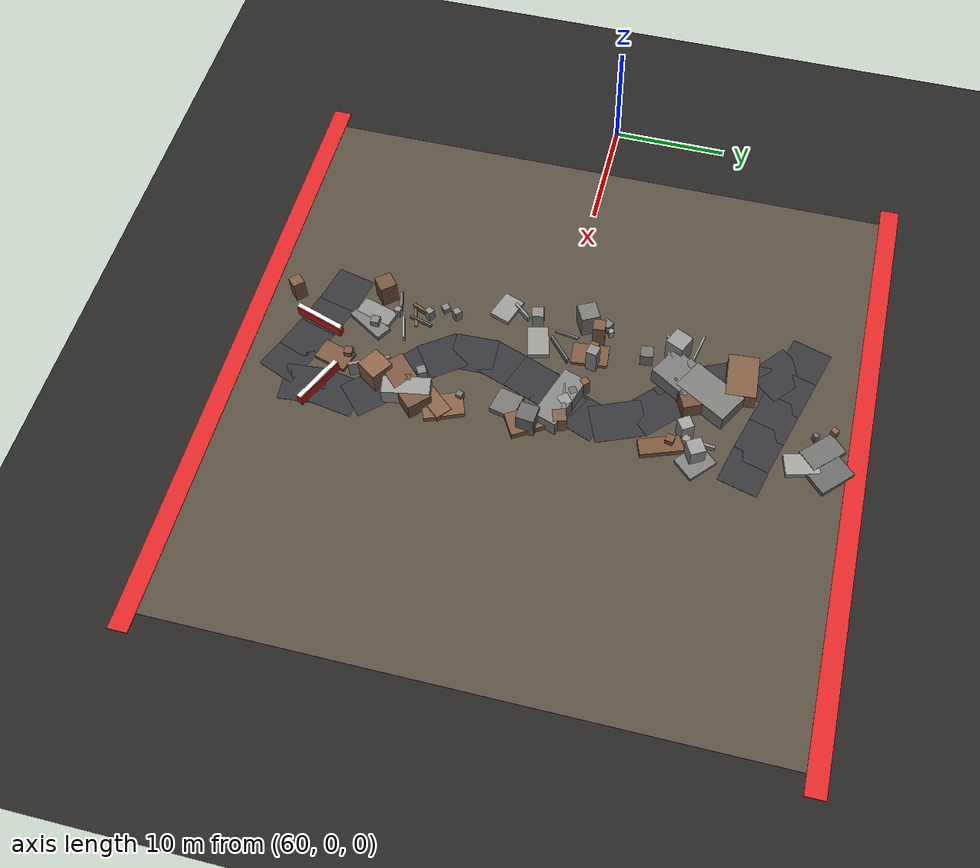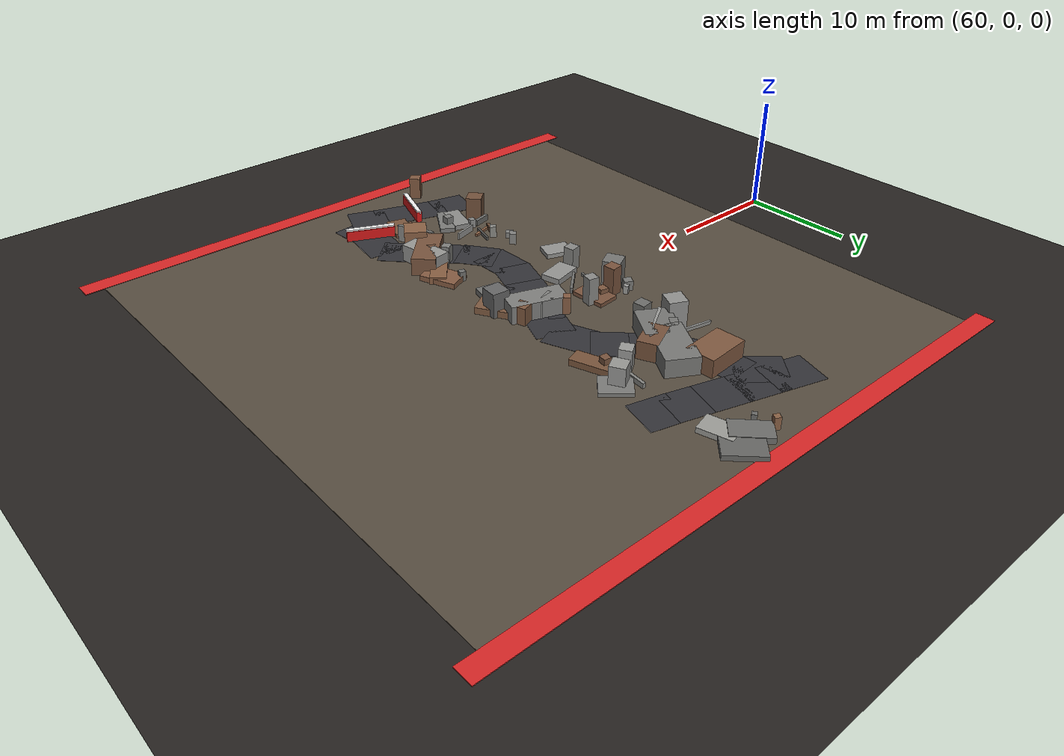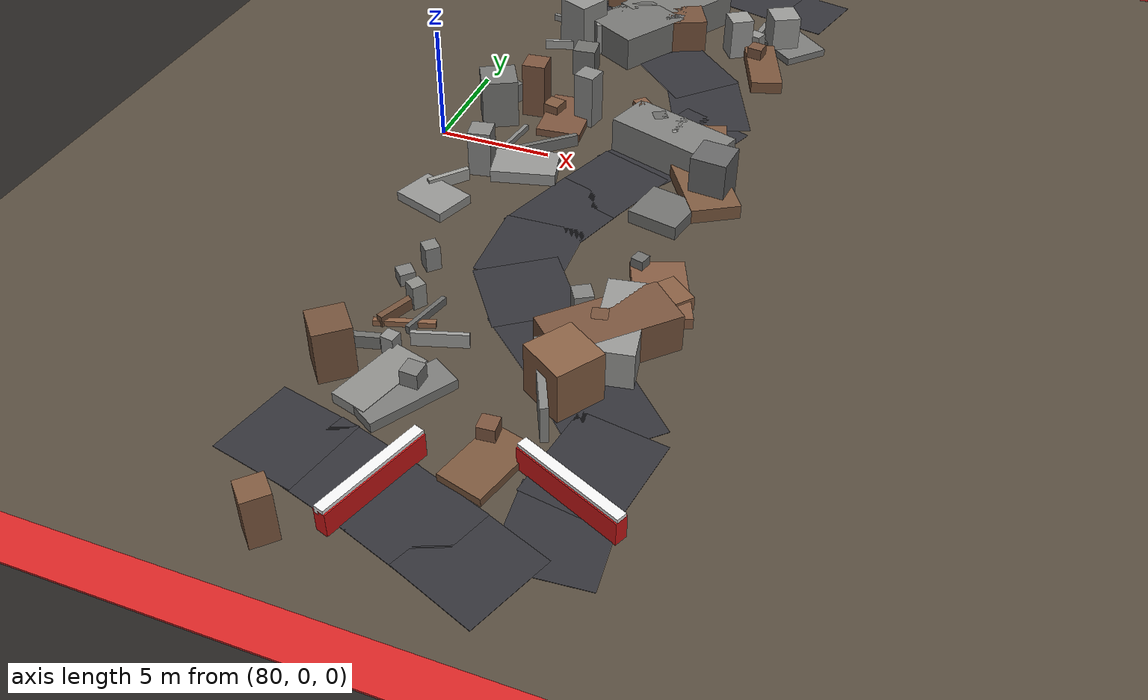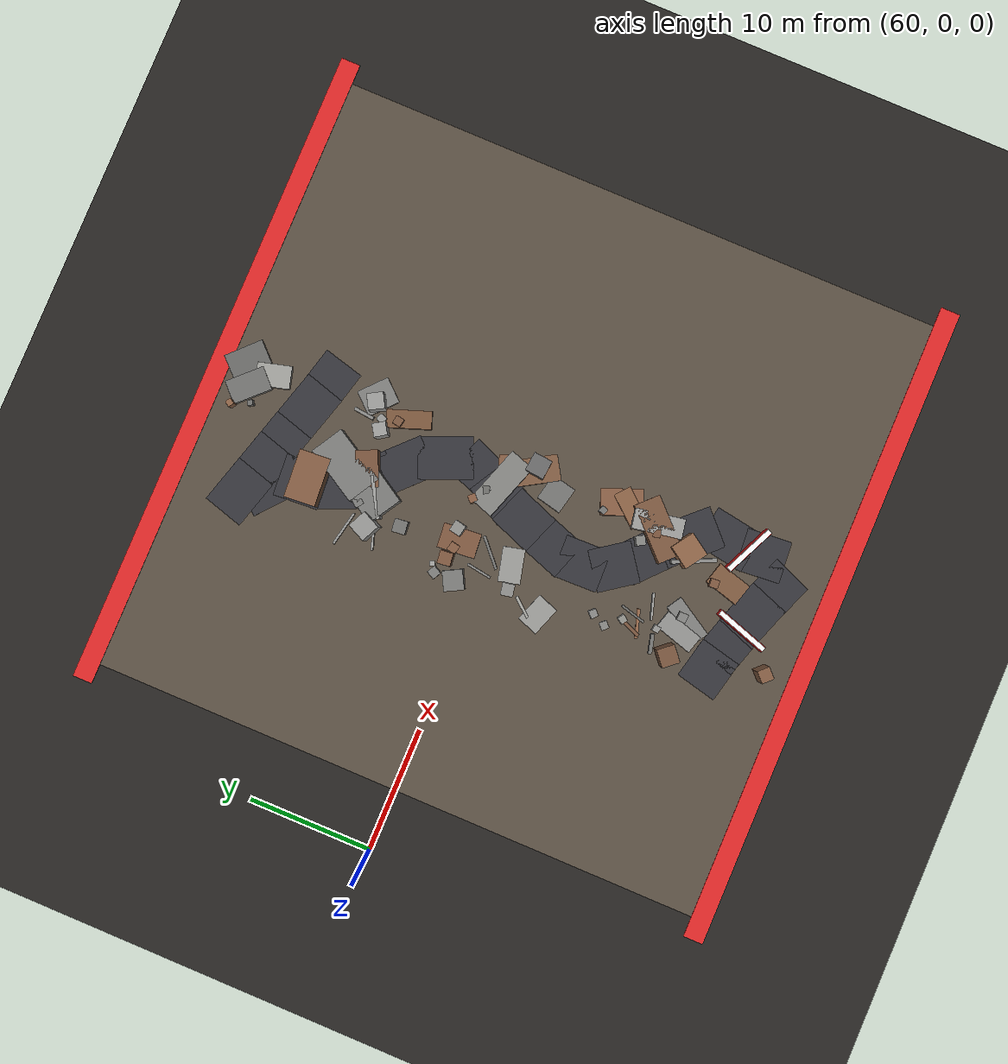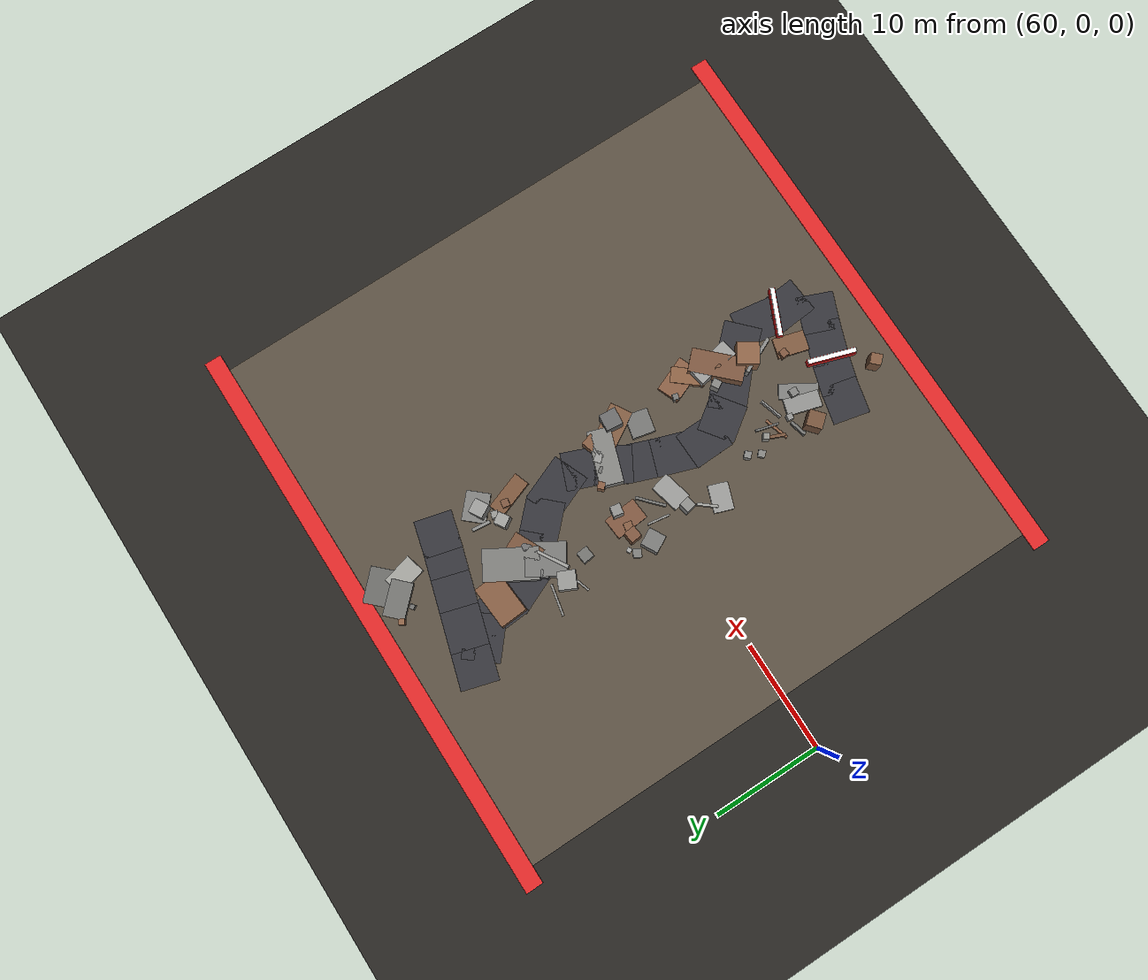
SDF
<sdf version="1.6">
 <world name="navitas_arena">
  <model name="ground_plane">
   <static>true</static>
   <link name="link">
    <collision name="collision">
     <geometry><plane><normal>0 0 1</normal><size>400 400</size></plane></geometry>
     <surface><friction><ode><mu>0.750</mu><mu2>0.750</mu2></ode></friction></surface>
    </collision>
    <visual name="visual">
     <cast_shadows>false</cast_shadows>
     <geometry><plane><normal>0 0 1</normal><size>400 400</size></plane></geometry>
     <material><ambient>0.150 0.140 0.130 1</ambient><diffuse>0.150 0.140 0.130 1</diffuse></material>
    </visual>
   </link>
  </model>
  <model name="gd_zor">
   <static>true</static>
   <pose>90.000 0.000 0.010 0 0 0.000</pose>
   <link name="link">
    <collision name="col"><geometry><box><size>50.000 50.000 0.020</size></box></geometry></collision>
    <visual name="vis">
     <geometry><box><size>50.000 50.000 0.020</size></box></geometry>
     <material><ambient>0.34 0.30 0.25 1</ambient><diffuse>0.34 0.30 0.25 1</diffuse></material>
    </visual>
   </link>
  </model>
  <model name="brd_zor_N">
   <static>true</static>
   <pose>90.000 25.800 0.040 0 0 0.000</pose>
   <link name="link">
    <collision name="col"><geometry><box><size>53.200 1.600 0.080</size></box></geometry></collision>
    <visual name="vis">
     <geometry><box><size>53.200 1.600 0.080</size></box></geometry>
     <material><ambient>0.85 0.15 0.15 1</ambient><diffuse>0.85 0.15 0.15 1</diffuse></material>
    </visual>
   </link>
  </model>
  <model name="brd_zor_S">
   <static>true</static>
   <pose>90.000 -25.800 0.040 0 0 0.000</pose>
   <link name="link">
    <collision name="col"><geometry><box><size>53.200 1.600 0.080</size></box></geometry></collision>
    <visual name="vis">
     <geometry><box><size>53.200 1.600 0.080</size></box></geometry>
     <material><ambient>0.85 0.15 0.15 1</ambient><diffuse>0.85 0.15 0.15 1</diffuse></material>
    </visual>
   </link>
  </model>
  <model name="road_zor_1_1">
   <static>true</static>
   <pose>90.930 -21.514 0.040 0 0 2.763</pose>
   <link name="link">
    <collision name="col"><geometry><box><size>3.468 3.400 0.020</size></box></geometry></collision>
    <visual name="vis">
     <geometry><box><size>3.468 3.400 0.020</size></box></geometry>
     <material><ambient>0.20 0.20 0.22 1</ambient><diffuse>0.20 0.20 0.22 1</diffuse></material>
    </visual>
   </link>
  </model>
  <model name="road_zor_1_2">
   <static>true</static>
   <pose>88.316 -20.524 0.040 0 0 2.794</pose>
   <link name="link">
    <collision name="col"><geometry><box><size>3.922 3.400 0.020</size></box></geometry></collision>
    <visual name="vis">
     <geometry><box><size>3.922 3.400 0.020</size></box></geometry>
     <material><ambient>0.20 0.20 0.22 1</ambient><diffuse>0.20 0.20 0.22 1</diffuse></material>
    </visual>
   </link>
  </model>
  <model name="road_zor_1_3">
   <static>true</static>
   <pose>85.616 -19.612 0.040 0 0 2.841</pose>
   <link name="link">
    <collision name="col"><geometry><box><size>3.580 3.400 0.020</size></box></geometry></collision>
    <visual name="vis">
     <geometry><box><size>3.580 3.400 0.020</size></box></geometry>
     <material><ambient>0.20 0.20 0.22 1</ambient><diffuse>0.20 0.20 0.22 1</diffuse></material>
    </visual>
   </link>
  </model>
  <model name="road_zor_1_4">
   <static>true</static>
   <pose>83.111 -18.931 0.040 0 0 2.914</pose>
   <link name="link">
    <collision name="col"><geometry><box><size>3.414 3.400 0.020</size></box></geometry></collision>
    <visual name="vis">
     <geometry><box><size>3.414 3.400 0.020</size></box></geometry>
     <material><ambient>0.20 0.20 0.22 1</ambient><diffuse>0.20 0.20 0.22 1</diffuse></material>
    </visual>
   </link>
  </model>
  <model name="road_zor_2_1">
   <static>true</static>
   <pose>92.983 -19.519 0.040 0 0 1.651</pose>
   <link name="link">
    <collision name="col"><geometry><box><size>3.612 3.400 0.020</size></box></geometry></collision>
    <visual name="vis">
     <geometry><box><size>3.612 3.400 0.020</size></box></geometry>
     <material><ambient>0.20 0.20 0.22 1</ambient><diffuse>0.20 0.20 0.22 1</diffuse></material>
    </visual>
   </link>
  </model>
  <model name="road_zor_2_2">
   <static>true</static>
   <pose>93.128 -16.583 0.040 0 0 1.412</pose>
   <link name="link">
    <collision name="col"><geometry><box><size>4.107 3.400 0.020</size></box></geometry></collision>
    <visual name="vis">
     <geometry><box><size>4.107 3.400 0.020</size></box></geometry>
     <material><ambient>0.20 0.20 0.22 1</ambient><diffuse>0.20 0.20 0.22 1</diffuse></material>
    </visual>
   </link>
  </model>
  <model name="road_zor_2_3">
   <static>true</static>
   <pose>92.045 -13.587 0.040 0 0 2.329</pose>
   <link name="link">
    <collision name="col"><geometry><box><size>4.789 3.400 0.020</size></box></geometry></collision>
    <visual name="vis">
     <geometry><box><size>4.789 3.400 0.020</size></box></geometry>
     <material><ambient>0.20 0.20 0.22 1</ambient><diffuse>0.20 0.20 0.22 1</diffuse></material>
    </visual>
   </link>
  </model>
  <model name="road_zor_2_4">
   <static>true</static>
   <pose>89.555 -11.124 0.040 0 0 2.403</pose>
   <link name="link">
    <collision name="col"><geometry><box><size>4.021 3.400 0.020</size></box></geometry></collision>
    <visual name="vis">
     <geometry><box><size>4.021 3.400 0.020</size></box></geometry>
     <material><ambient>0.20 0.20 0.22 1</ambient><diffuse>0.20 0.20 0.22 1</diffuse></material>
    </visual>
   </link>
  </model>
  <model name="road_zor_2_5">
   <static>true</static>
   <pose>87.657 -9.036 0.040 0 0 2.194</pose>
   <link name="link">
    <collision name="col"><geometry><box><size>3.452 3.400 0.020</size></box></geometry></collision>
    <visual name="vis">
     <geometry><box><size>3.452 3.400 0.020</size></box></geometry>
     <material><ambient>0.20 0.20 0.22 1</ambient><diffuse>0.20 0.20 0.22 1</diffuse></material>
    </visual>
   </link>
  </model>
  <model name="road_zor_2_6">
   <static>true</static>
   <pose>86.875 -6.600 0.040 0 0 1.598</pose>
   <link name="link">
    <collision name="col"><geometry><box><size>3.701 3.400 0.020</size></box></geometry></collision>
    <visual name="vis">
     <geometry><box><size>3.701 3.400 0.020</size></box></geometry>
     <material><ambient>0.20 0.20 0.22 1</ambient><diffuse>0.20 0.20 0.22 1</diffuse></material>
    </visual>
   </link>
  </model>
  <model name="road_zor_2_7">
   <static>true</static>
   <pose>87.324 -3.800 0.040 0 0 1.237</pose>
   <link name="link">
    <collision name="col"><geometry><box><size>3.864 3.400 0.020</size></box></geometry></collision>
    <visual name="vis">
     <geometry><box><size>3.864 3.400 0.020</size></box></geometry>
     <material><ambient>0.20 0.20 0.22 1</ambient><diffuse>0.20 0.20 0.22 1</diffuse></material>
    </visual>
   </link>
  </model>
  <model name="road_zor_2_8">
   <static>true</static>
   <pose>88.292 -1.117 0.040 0 0 1.212</pose>
   <link name="link">
    <collision name="col"><geometry><box><size>3.642 3.400 0.020</size></box></geometry></collision>
    <visual name="vis">
     <geometry><box><size>3.642 3.400 0.020</size></box></geometry>
     <material><ambient>0.20 0.20 0.22 1</ambient><diffuse>0.20 0.20 0.22 1</diffuse></material>
    </visual>
   </link>
  </model>
  <model name="road_zor_2_9">
   <static>true</static>
   <pose>89.447 1.333 0.040 0 0 1.047</pose>
   <link name="link">
    <collision name="col"><geometry><box><size>3.594 3.400 0.020</size></box></geometry></collision>
    <visual name="vis">
     <geometry><box><size>3.594 3.400 0.020</size></box></geometry>
     <material><ambient>0.20 0.20 0.22 1</ambient><diffuse>0.20 0.20 0.22 1</diffuse></material>
    </visual>
   </link>
  </model>
  <model name="road_zor_2_10">
   <static>true</static>
   <pose>90.585 3.667 0.040 0 0 1.192</pose>
   <link name="link">
    <collision name="col"><geometry><box><size>3.411 3.400 0.020</size></box></geometry></collision>
    <visual name="vis">
     <geometry><box><size>3.411 3.400 0.020</size></box></geometry>
     <material><ambient>0.20 0.20 0.22 1</ambient><diffuse>0.20 0.20 0.22 1</diffuse></material>
    </visual>
   </link>
  </model>
  <model name="road_zor_2_11">
   <static>true</static>
   <pose>90.388 6.453 0.040 0 0 1.958</pose>
   <link name="link">
    <collision name="col"><geometry><box><size>4.399 3.400 0.020</size></box></geometry></collision>
    <visual name="vis">
     <geometry><box><size>4.399 3.400 0.020</size></box></geometry>
     <material><ambient>0.20 0.20 0.22 1</ambient><diffuse>0.20 0.20 0.22 1</diffuse></material>
    </visual>
   </link>
  </model>
  <model name="road_zor_2_12">
   <static>true</static>
   <pose>88.644 9.124 0.040 0 0 2.371</pose>
   <link name="link">
    <collision name="col"><geometry><box><size>3.919 3.400 0.020</size></box></geometry></collision>
    <visual name="vis">
     <geometry><box><size>3.919 3.400 0.020</size></box></geometry>
     <material><ambient>0.20 0.20 0.22 1</ambient><diffuse>0.20 0.20 0.22 1</diffuse></material>
    </visual>
   </link>
  </model>
  <model name="road_zor_2_13">
   <static>true</static>
   <pose>86.534 11.153 0.040 0 0 2.380</pose>
   <link name="link">
    <collision name="col"><geometry><box><size>3.735 3.400 0.020</size></box></geometry></collision>
    <visual name="vis">
     <geometry><box><size>3.735 3.400 0.020</size></box></geometry>
     <material><ambient>0.20 0.20 0.22 1</ambient><diffuse>0.20 0.20 0.22 1</diffuse></material>
    </visual>
   </link>
  </model>
  <model name="road_zor_2_14">
   <static>true</static>
   <pose>84.936 13.427 0.040 0 0 1.987</pose>
   <link name="link">
    <collision name="col"><geometry><box><size>3.733 3.400 0.020</size></box></geometry></collision>
    <visual name="vis">
     <geometry><box><size>3.733 3.400 0.020</size></box></geometry>
     <material><ambient>0.20 0.20 0.22 1</ambient><diffuse>0.20 0.20 0.22 1</diffuse></material>
    </visual>
   </link>
  </model>
  <model name="road_zor_2_15">
   <static>true</static>
   <pose>84.272 16.111 0.040 0 0 1.637</pose>
   <link name="link">
    <collision name="col"><geometry><box><size>3.684 3.400 0.020</size></box></geometry></collision>
    <visual name="vis">
     <geometry><box><size>3.684 3.400 0.020</size></box></geometry>
     <material><ambient>0.20 0.20 0.22 1</ambient><diffuse>0.20 0.20 0.22 1</diffuse></material>
    </visual>
   </link>
  </model>
  <model name="road_zor_2_16">
   <static>true</static>
   <pose>82.969 18.516 0.040 0 0 2.444</pose>
   <link name="link">
    <collision name="col"><geometry><box><size>4.061 3.400 0.020</size></box></geometry></collision>
    <visual name="vis">
     <geometry><box><size>4.061 3.400 0.020</size></box></geometry>
     <material><ambient>0.20 0.20 0.22 1</ambient><diffuse>0.20 0.20 0.22 1</diffuse></material>
    </visual>
   </link>
  </model>
  <model name="road_zor_3_22">
   <static>true</static>
   <pose>92.568 17.194 0.040 0 0 2.889</pose>
   <link name="link">
    <collision name="col"><geometry><box><size>3.353 3.400 0.020</size></box></geometry></collision>
    <visual name="vis">
     <geometry><box><size>3.353 3.400 0.020</size></box></geometry>
     <material><ambient>0.20 0.20 0.22 1</ambient><diffuse>0.20 0.20 0.22 1</diffuse></material>
    </visual>
   </link>
  </model>
  <model name="road_zor_3_23">
   <static>true</static>
   <pose>89.981 17.910 0.040 0 0 2.856</pose>
   <link name="link">
    <collision name="col"><geometry><box><size>3.815 3.400 0.020</size></box></geometry></collision>
    <visual name="vis">
     <geometry><box><size>3.815 3.400 0.020</size></box></geometry>
     <material><ambient>0.20 0.20 0.22 1</ambient><diffuse>0.20 0.20 0.22 1</diffuse></material>
    </visual>
   </link>
  </model>
  <model name="road_zor_3_24">
   <static>true</static>
   <pose>87.181 18.730 0.040 0 0 2.857</pose>
   <link name="link">
    <collision name="col"><geometry><box><size>3.819 3.400 0.020</size></box></geometry></collision>
    <visual name="vis">
     <geometry><box><size>3.819 3.400 0.020</size></box></geometry>
     <material><ambient>0.20 0.20 0.22 1</ambient><diffuse>0.20 0.20 0.22 1</diffuse></material>
    </visual>
   </link>
  </model>
  <model name="road_zor_3_25">
   <static>true</static>
   <pose>84.481 19.520 0.040 0 0 2.857</pose>
   <link name="link">
    <collision name="col"><geometry><box><size>3.608 3.400 0.020</size></box></geometry></collision>
    <visual name="vis">
     <geometry><box><size>3.608 3.400 0.020</size></box></geometry>
     <material><ambient>0.20 0.20 0.22 1</ambient><diffuse>0.20 0.20 0.22 1</diffuse></material>
    </visual>
   </link>
  </model>
  <model name="road_zor_3_26">
   <static>true</static>
   <pose>81.648 20.348 0.040 0 0 2.857</pose>
   <link name="link">
    <collision name="col"><geometry><box><size>4.095 3.400 0.020</size></box></geometry></collision>
    <visual name="vis">
     <geometry><box><size>4.095 3.400 0.020</size></box></geometry>
     <material><ambient>0.20 0.20 0.22 1</ambient><diffuse>0.20 0.20 0.22 1</diffuse></material>
    </visual>
   </link>
  </model>
  <model name="bar_zor_1">
   <static>true</static>
   <pose>86.896 -20.009 0.500 0 0 4.396</pose>
   <link name="link">
    <collision name="col"><geometry><box><size>4.400 0.500 1.000</size></box></geometry></collision>
    <visual name="vis">
     <geometry><box><size>4.400 0.500 1.000</size></box></geometry>
     <material><ambient>0.85 0.10 0.10 1</ambient><diffuse>0.85 0.10 0.10 1</diffuse></material>
    </visual>
   </link>
  </model>
  <model name="bar_zor_1b">
   <static>true</static>
   <pose>86.896 -20.009 1.000 0 0 4.396</pose>
   <link name="link">
    <collision name="col"><geometry><box><size>4.400 0.400 0.300</size></box></geometry></collision>
    <visual name="vis">
     <geometry><box><size>4.400 0.400 0.300</size></box></geometry>
     <material><ambient>0.95 0.95 0.95 1</ambient><diffuse>0.95 0.95 0.95 1</diffuse></material>
    </visual>
   </link>
  </model>
  <model name="bar_zor_2">
   <static>true</static>
   <pose>92.874 -18.167 0.500 0 0 2.713</pose>
   <link name="link">
    <collision name="col"><geometry><box><size>4.400 0.500 1.000</size></box></geometry></collision>
    <visual name="vis">
     <geometry><box><size>4.400 0.500 1.000</size></box></geometry>
     <material><ambient>0.85 0.10 0.10 1</ambient><diffuse>0.85 0.10 0.10 1</diffuse></material>
    </visual>
   </link>
  </model>
  <model name="bar_zor_2b">
   <static>true</static>
   <pose>92.874 -18.167 1.000 0 0 2.713</pose>
   <link name="link">
    <collision name="col"><geometry><box><size>4.400 0.400 0.300</size></box></geometry></collision>
    <visual name="vis">
     <geometry><box><size>4.400 0.400 0.300</size></box></geometry>
     <material><ambient>0.95 0.95 0.95 1</ambient><diffuse>0.95 0.95 0.95 1</diffuse></material>
    </visual>
   </link>
  </model>
  <model name="blk_zor_2_0_0">
   <static>true</static>
   <pose>91.642 -11.038 0.800 0 0 0.790</pose>
   <link name="link">
    <collision name="col"><geometry><box><size>4.883 2.126 1.600</size></box></geometry></collision>
    <visual name="vis">
     <geometry><box><size>4.883 2.126 1.600</size></box></geometry>
     <material><ambient>0.47 0.33 0.24 1</ambient><diffuse>0.47 0.33 0.24 1</diffuse></material>
    </visual>
   </link>
  </model>
  <model name="blk_zor_2_0_1">
   <static>true</static>
   <pose>90.290 -10.046 0.800 0 0 0.543</pose>
   <link name="link">
    <collision name="col"><geometry><box><size>0.746 0.746 1.600</size></box></geometry></collision>
    <visual name="vis">
     <geometry><box><size>0.746 0.746 1.600</size></box></geometry>
     <material><ambient>0.50 0.50 0.49 1</ambient><diffuse>0.50 0.50 0.49 1</diffuse></material>
    </visual>
   </link>
  </model>
  <model name="blk_zor_2_0_2">
   <static>true</static>
   <pose>90.983 -13.747 1.074 0 0 2.554</pose>
   <link name="link">
    <collision name="col"><geometry><box><size>1.989 1.989 2.148</size></box></geometry></collision>
    <visual name="vis">
     <geometry><box><size>1.989 1.989 2.148</size></box></geometry>
     <material><ambient>0.54 0.38 0.27 1</ambient><diffuse>0.54 0.38 0.27 1</diffuse></material>
    </visual>
   </link>
  </model>
  <model name="blk_zor_2_0_3">
   <static>true</static>
   <pose>91.288 -10.986 0.800 0 0 1.800</pose>
   <link name="link">
    <collision name="col"><geometry><box><size>0.622 0.622 1.600</size></box></geometry></collision>
    <visual name="vis">
     <geometry><box><size>0.622 0.622 1.600</size></box></geometry>
     <material><ambient>0.46 0.32 0.23 1</ambient><diffuse>0.46 0.32 0.23 1</diffuse></material>
    </visual>
   </link>
  </model>
  <model name="blk_zor_2_0_4">
   <static>true</static>
   <pose>92.033 -10.836 0.800 0 0 1.741</pose>
   <link name="link">
    <collision name="col"><geometry><box><size>3.969 1.600 1.600</size></box></geometry></collision>
    <visual name="vis">
     <geometry><box><size>3.969 1.600 1.600</size></box></geometry>
     <material><ambient>0.59 0.59 0.58 1</ambient><diffuse>0.59 0.59 0.58 1</diffuse></material>
    </visual>
   </link>
  </model>
  <model name="blk_zor_2_0_5">
   <static>true</static>
   <pose>90.436 -14.487 0.800 0 0 2.007</pose>
   <link name="link">
    <collision name="col"><geometry><box><size>3.528 0.295 1.600</size></box></geometry></collision>
    <visual name="vis">
     <geometry><box><size>3.528 0.295 1.600</size></box></geometry>
     <material><ambient>0.52 0.52 0.51 1</ambient><diffuse>0.52 0.52 0.51 1</diffuse></material>
    </visual>
   </link>
  </model>
  <model name="blk_zor_2_1_0">
   <static>true</static>
   <pose>89.302 2.426 0.800 0 0 2.108</pose>
   <link name="link">
    <collision name="col"><geometry><box><size>0.607 0.607 1.600</size></box></geometry></collision>
    <visual name="vis">
     <geometry><box><size>0.607 0.607 1.600</size></box></geometry>
     <material><ambient>0.41 0.41 0.40 1</ambient><diffuse>0.41 0.41 0.40 1</diffuse></material>
    </visual>
   </link>
  </model>
  <model name="blk_zor_2_1_1">
   <static>true</static>
   <pose>90.329 1.954 0.800 0 0 0.657</pose>
   <link name="link">
    <collision name="col"><geometry><box><size>0.968 0.968 1.600</size></box></geometry></collision>
    <visual name="vis">
     <geometry><box><size>0.968 0.968 1.600</size></box></geometry>
     <material><ambient>0.58 0.58 0.57 1</ambient><diffuse>0.58 0.58 0.57 1</diffuse></material>
    </visual>
   </link>
  </model>
  <model name="blk_zor_2_1_2">
   <static>true</static>
   <pose>90.169 1.563 0.800 0 0 2.812</pose>
   <link name="link">
    <collision name="col"><geometry><box><size>4.931 2.095 1.600</size></box></geometry></collision>
    <visual name="vis">
     <geometry><box><size>4.931 2.095 1.600</size></box></geometry>
     <material><ambient>0.50 0.50 0.49 1</ambient><diffuse>0.50 0.50 0.49 1</diffuse></material>
    </visual>
   </link>
  </model>
  <model name="blk_zor_2_1_3">
   <static>true</static>
   <pose>88.254 3.189 0.800 0 0 0.787</pose>
   <link name="link">
    <collision name="col"><geometry><box><size>0.627 0.627 1.600</size></box></geometry></collision>
    <visual name="vis">
     <geometry><box><size>0.627 0.627 1.600</size></box></geometry>
     <material><ambient>0.52 0.36 0.26 1</ambient><diffuse>0.52 0.36 0.26 1</diffuse></material>
    </visual>
   </link>
  </model>
  <model name="blk_zor_2_1_4">
   <static>true</static>
   <pose>90.072 1.928 0.800 0 0 0.146</pose>
   <link name="link">
    <collision name="col"><geometry><box><size>2.582 0.322 1.600</size></box></geometry></collision>
    <visual name="vis">
     <geometry><box><size>2.582 0.322 1.600</size></box></geometry>
     <material><ambient>0.51 0.51 0.50 1</ambient><diffuse>0.51 0.51 0.50 1</diffuse></material>
    </visual>
   </link>
  </model>
  <model name="blk_zor_2_1_5">
   <static>true</static>
   <pose>91.846 1.904 0.800 0 0 1.874</pose>
   <link name="link">
    <collision name="col"><geometry><box><size>1.111 1.111 1.600</size></box></geometry></collision>
    <visual name="vis">
     <geometry><box><size>1.111 1.111 1.600</size></box></geometry>
     <material><ambient>0.50 0.35 0.25 1</ambient><diffuse>0.50 0.35 0.25 1</diffuse></material>
    </visual>
   </link>
  </model>
  <model name="blk_zor_2_2_0">
   <static>true</static>
   <pose>85.557 10.568 0.800 0 0 1.024</pose>
   <link name="link">
    <collision name="col"><geometry><box><size>3.574 2.955 1.600</size></box></geometry></collision>
    <visual name="vis">
     <geometry><box><size>3.574 2.955 1.600</size></box></geometry>
     <material><ambient>0.46 0.46 0.45 1</ambient><diffuse>0.46 0.46 0.45 1</diffuse></material>
    </visual>
   </link>
  </model>
  <model name="blk_zor_2_2_1">
   <static>true</static>
   <pose>86.780 13.264 0.800 0 0 1.044</pose>
   <link name="link">
    <collision name="col"><geometry><box><size>4.877 2.823 1.600</size></box></geometry></collision>
    <visual name="vis">
     <geometry><box><size>4.877 2.823 1.600</size></box></geometry>
     <material><ambient>0.47 0.47 0.46 1</ambient><diffuse>0.47 0.47 0.46 1</diffuse></material>
    </visual>
   </link>
  </model>
  <model name="blk_zor_2_2_2">
   <static>true</static>
   <pose>84.547 11.258 0.800 0 0 2.491</pose>
   <link name="link">
    <collision name="col"><geometry><box><size>0.699 0.699 1.600</size></box></geometry></collision>
    <visual name="vis">
     <geometry><box><size>0.699 0.699 1.600</size></box></geometry>
     <material><ambient>0.46 0.46 0.45 1</ambient><diffuse>0.46 0.46 0.45 1</diffuse></material>
    </visual>
   </link>
  </model>
  <model name="blk_zor_2_2_3">
   <static>true</static>
   <pose>87.263 11.326 0.800 0 0 3.107</pose>
   <link name="link">
    <collision name="col"><geometry><box><size>0.792 0.792 1.600</size></box></geometry></collision>
    <visual name="vis">
     <geometry><box><size>0.792 0.792 1.600</size></box></geometry>
     <material><ambient>0.42 0.42 0.42 1</ambient><diffuse>0.42 0.42 0.42 1</diffuse></material>
    </visual>
   </link>
  </model>
  <model name="blk_zor_2_2_4">
   <static>true</static>
   <pose>85.409 10.168 0.800 0 0 0.537</pose>
   <link name="link">
    <collision name="col"><geometry><box><size>3.428 0.290 1.600</size></box></geometry></collision>
    <visual name="vis">
     <geometry><box><size>3.428 0.290 1.600</size></box></geometry>
     <material><ambient>0.60 0.60 0.59 1</ambient><diffuse>0.60 0.60 0.59 1</diffuse></material>
    </visual>
   </link>
  </model>
  <model name="blk_zor_2_2_5">
   <static>true</static>
   <pose>87.182 11.593 0.800 0 0 0.441</pose>
   <link name="link">
    <collision name="col"><geometry><box><size>2.916 1.730 1.600</size></box></geometry></collision>
    <visual name="vis">
     <geometry><box><size>2.916 1.730 1.600</size></box></geometry>
     <material><ambient>0.46 0.32 0.23 1</ambient><diffuse>0.46 0.32 0.23 1</diffuse></material>
    </visual>
   </link>
  </model>
  <model name="deb_zor_1">
   <static>true</static>
   <pose>91.101 13.693 0.234 0 0 1.463</pose>
   <link name="link">
    <collision name="col"><geometry><box><size>1.691 0.263 0.468</size></box></geometry></collision>
    <visual name="vis">
     <geometry><box><size>1.691 0.263 0.468</size></box></geometry>
     <material><ambient>0.52 0.52 0.51 1</ambient><diffuse>0.52 0.52 0.51 1</diffuse></material>
    </visual>
   </link>
  </model>
  <model name="deb_zor_20">
   <static>true</static>
   <pose>83.122 -10.062 0.274 0 0 2.339</pose>
   <link name="link">
    <collision name="col"><geometry><box><size>0.625 0.625 0.548</size></box></geometry></collision>
    <visual name="vis">
     <geometry><box><size>0.625 0.625 0.548</size></box></geometry>
     <material><ambient>0.50 0.50 0.49 1</ambient><diffuse>0.50 0.50 0.49 1</diffuse></material>
    </visual>
   </link>
  </model>
  <model name="deb_zor_24">
   <static>true</static>
   <pose>84.889 0.310 0.276 0 0 0.737</pose>
   <link name="link">
    <collision name="col"><geometry><box><size>2.749 0.224 0.552</size></box></geometry></collision>
    <visual name="vis">
     <geometry><box><size>2.749 0.224 0.552</size></box></geometry>
     <material><ambient>0.43 0.43 0.42 1</ambient><diffuse>0.43 0.43 0.42 1</diffuse></material>
    </visual>
   </link>
  </model>
  <model name="deb_zor_26">
   <static>true</static>
   <pose>92.549 -7.661 0.253 0 0 1.957</pose>
   <link name="link">
    <collision name="col"><geometry><box><size>3.398 2.102 0.505</size></box></geometry></collision>
    <visual name="vis">
     <geometry><box><size>3.398 2.102 0.505</size></box></geometry>
     <material><ambient>0.52 0.36 0.26 1</ambient><diffuse>0.52 0.36 0.26 1</diffuse></material>
    </visual>
   </link>
  </model>
  <model name="deb_zor_33">
   <static>true</static>
   <pose>83.024 10.000 1.225 0 0 1.128</pose>
   <link name="link">
    <collision name="col"><geometry><box><size>1.590 1.590 2.450</size></box></geometry></collision>
    <visual name="vis">
     <geometry><box><size>1.590 1.590 2.450</size></box></geometry>
     <material><ambient>0.57 0.57 0.56 1</ambient><diffuse>0.57 0.57 0.56 1</diffuse></material>
    </visual>
   </link>
  </model>
  <model name="deb_zor_39">
   <static>true</static>
   <pose>91.134 -2.657 0.298 0 0 1.352</pose>
   <link name="link">
    <collision name="col"><geometry><box><size>2.079 2.176 0.595</size></box></geometry></collision>
    <visual name="vis">
     <geometry><box><size>2.079 2.176 0.595</size></box></geometry>
     <material><ambient>0.44 0.44 0.43 1</ambient><diffuse>0.44 0.44 0.43 1</diffuse></material>
    </visual>
   </link>
  </model>
  <model name="deb_zor_42">
   <static>true</static>
   <pose>92.040 10.240 0.287 0 0 1.915</pose>
   <link name="link">
    <collision name="col"><geometry><box><size>3.578 1.437 0.574</size></box></geometry></collision>
    <visual name="vis">
     <geometry><box><size>3.578 1.437 0.574</size></box></geometry>
     <material><ambient>0.47 0.33 0.23 1</ambient><diffuse>0.47 0.33 0.23 1</diffuse></material>
    </visual>
   </link>
  </model>
  <model name="deb_zor_49">
   <static>true</static>
   <pose>84.477 -22.768 1.052 0 0 2.360</pose>
   <link name="link">
    <collision name="col"><geometry><box><size>1.007 1.007 2.105</size></box></geometry></collision>
    <visual name="vis">
     <geometry><box><size>1.007 1.007 2.105</size></box></geometry>
     <material><ambient>0.50 0.35 0.25 1</ambient><diffuse>0.50 0.35 0.25 1</diffuse></material>
    </visual>
   </link>
  </model>
  <model name="deb_zor_54">
   <static>true</static>
   <pose>84.628 -1.603 0.278 0 0 0.238</pose>
   <link name="link">
    <collision name="col"><geometry><box><size>2.766 1.769 0.555</size></box></geometry></collision>
    <visual name="vis">
     <geometry><box><size>2.766 1.769 0.555</size></box></geometry>
     <material><ambient>0.58 0.58 0.57 1</ambient><diffuse>0.58 0.58 0.57 1</diffuse></material>
    </visual>
   </link>
  </model>
  <model name="deb_zor_57">
   <static>true</static>
   <pose>83.659 -8.912 0.536 0 0 2.364</pose>
   <link name="link">
    <collision name="col"><geometry><box><size>0.611 0.611 1.072</size></box></geometry></collision>
    <visual name="vis">
     <geometry><box><size>0.611 0.611 1.072</size></box></geometry>
     <material><ambient>0.51 0.51 0.50 1</ambient><diffuse>0.51 0.51 0.50 1</diffuse></material>
    </visual>
   </link>
  </model>
  <model name="deb_zor_58">
   <static>true</static>
   <pose>92.741 13.186 0.177 0 0 2.409</pose>
   <link name="link">
    <collision name="col"><geometry><box><size>2.643 2.154 0.355</size></box></geometry></collision>
    <visual name="vis">
     <geometry><box><size>2.643 2.154 0.355</size></box></geometry>
     <material><ambient>0.48 0.48 0.47 1</ambient><diffuse>0.48 0.48 0.47 1</diffuse></material>
    </visual>
   </link>
  </model>
  <model name="deb_zor_63">
   <static>true</static>
   <pose>88.394 22.198 0.393 0 0 0.624</pose>
   <link name="link">
    <collision name="col"><geometry><box><size>0.407 0.407 0.785</size></box></geometry></collision>
    <visual name="vis">
     <geometry><box><size>0.407 0.407 0.785</size></box></geometry>
     <material><ambient>0.42 0.42 0.41 1</ambient><diffuse>0.42 0.42 0.41 1</diffuse></material>
    </visual>
   </link>
  </model>
  <model name="deb_zor_68">
   <static>true</static>
   <pose>82.923 -15.332 1.115 0 0 0.701</pose>
   <link name="link">
    <collision name="col"><geometry><box><size>1.445 1.445 2.230</size></box></geometry></collision>
    <visual name="vis">
     <geometry><box><size>1.445 1.445 2.230</size></box></geometry>
     <material><ambient>0.45 0.32 0.23 1</ambient><diffuse>0.45 0.32 0.23 1</diffuse></material>
    </visual>
   </link>
  </model>
  <model name="deb_zor_71">
   <static>true</static>
   <pose>92.258 -0.615 0.314 0 0 2.115</pose>
   <link name="link">
    <collision name="col"><geometry><box><size>3.405 2.087 0.629</size></box></geometry></collision>
    <visual name="vis">
     <geometry><box><size>3.405 2.087 0.629</size></box></geometry>
     <material><ambient>0.49 0.35 0.25 1</ambient><diffuse>0.49 0.35 0.25 1</diffuse></material>
    </visual>
   </link>
  </model>
  <model name="deb_zor_73">
   <static>true</static>
   <pose>84.136 -11.170 0.522 0 0 0.969</pose>
   <link name="link">
    <collision name="col"><geometry><box><size>0.563 0.563 1.044</size></box></geometry></collision>
    <visual name="vis">
     <geometry><box><size>0.563 0.563 1.044</size></box></geometry>
     <material><ambient>0.54 0.54 0.52 1</ambient><diffuse>0.54 0.54 0.52 1</diffuse></material>
    </visual>
   </link>
  </model>
  <model name="deb_zor_76">
   <static>true</static>
   <pose>84.251 -12.432 0.129 0 0 0.300</pose>
   <link name="link">
    <collision name="col"><geometry><box><size>2.338 0.236 0.257</size></box></geometry></collision>
    <visual name="vis">
     <geometry><box><size>2.338 0.236 0.257</size></box></geometry>
     <material><ambient>0.55 0.38 0.27 1</ambient><diffuse>0.55 0.38 0.27 1</diffuse></material>
    </visual>
   </link>
  </model>
  <model name="deb_zor_78">
   <static>true</static>
   <pose>91.363 -6.531 0.454 0 0 1.287</pose>
   <link name="link">
    <collision name="col"><geometry><box><size>0.529 0.529 0.908</size></box></geometry></collision>
    <visual name="vis">
     <geometry><box><size>0.529 0.529 0.908</size></box></geometry>
     <material><ambient>0.44 0.44 0.43 1</ambient><diffuse>0.44 0.44 0.43 1</diffuse></material>
    </visual>
   </link>
  </model>
  <model name="deb_zor_81">
   <static>true</static>
   <pose>92.371 13.320 0.269 0 0 1.252</pose>
   <link name="link">
    <collision name="col"><geometry><box><size>0.473 0.473 0.538</size></box></geometry></collision>
    <visual name="vis">
     <geometry><box><size>0.473 0.473 0.538</size></box></geometry>
     <material><ambient>0.50 0.50 0.49 1</ambient><diffuse>0.50 0.50 0.49 1</diffuse></material>
    </visual>
   </link>
  </model>
  <model name="deb_zor_97">
   <static>true</static>
   <pose>81.900 -4.972 0.212 0 0 2.799</pose>
   <link name="link">
    <collision name="col"><geometry><box><size>2.467 1.799 0.425</size></box></geometry></collision>
    <visual name="vis">
     <geometry><box><size>2.467 1.799 0.425</size></box></geometry>
     <material><ambient>0.58 0.58 0.57 1</ambient><diffuse>0.58 0.58 0.57 1</diffuse></material>
    </visual>
   </link>
  </model>
  <model name="deb_zor_98">
   <static>true</static>
   <pose>89.461 -16.675 0.454 0 0 1.651</pose>
   <link name="link">
    <collision name="col"><geometry><box><size>0.680 0.680 0.907</size></box></geometry></collision>
    <visual name="vis">
     <geometry><box><size>0.680 0.680 0.907</size></box></geometry>
     <material><ambient>0.48 0.33 0.24 1</ambient><diffuse>0.48 0.33 0.24 1</diffuse></material>
    </visual>
   </link>
  </model>
  <model name="deb_zor_99">
   <static>true</static>
   <pose>90.367 11.874 0.968 0 0 2.149</pose>
   <link name="link">
    <collision name="col"><geometry><box><size>1.066 1.066 1.936</size></box></geometry></collision>
    <visual name="vis">
     <geometry><box><size>1.066 1.066 1.936</size></box></geometry>
     <material><ambient>0.60 0.60 0.59 1</ambient><diffuse>0.60 0.60 0.59 1</diffuse></material>
    </visual>
   </link>
  </model>
  <model name="deb_zor_100">
   <static>true</static>
   <pose>91.427 23.721 0.236 0 0 2.371</pose>
   <link name="link">
    <collision name="col"><geometry><box><size>3.202 2.156 0.472</size></box></geometry></collision>
    <visual name="vis">
     <geometry><box><size>3.202 2.156 0.472</size></box></geometry>
     <material><ambient>0.40 0.40 0.39 1</ambient><diffuse>0.40 0.40 0.39 1</diffuse></material>
    </visual>
   </link>
  </model>
  <model name="deb_zor_107">
   <static>true</static>
   <pose>84.823 -11.802 0.178 0 0 1.312</pose>
   <link name="link">
    <collision name="col"><geometry><box><size>2.099 0.184 0.356</size></box></geometry></collision>
    <visual name="vis">
     <geometry><box><size>2.099 0.184 0.356</size></box></geometry>
     <material><ambient>0.41 0.41 0.40 1</ambient><diffuse>0.41 0.41 0.40 1</diffuse></material>
    </visual>
   </link>
  </model>
  <model name="deb_zor_119">
   <static>true</static>
   <pose>89.850 -17.759 0.177 0 0 1.296</pose>
   <link name="link">
    <collision name="col"><geometry><box><size>2.874 1.824 0.355</size></box></geometry></collision>
    <visual name="vis">
     <geometry><box><size>2.874 1.824 0.355</size></box></geometry>
     <material><ambient>0.48 0.34 0.24 1</ambient><diffuse>0.48 0.34 0.24 1</diffuse></material>
    </visual>
   </link>
  </model>
  <model name="deb_zor_124">
   <static>true</static>
   <pose>83.239 -13.999 0.284 0 0 0.248</pose>
   <link name="link">
    <collision name="col"><geometry><box><size>1.581 0.281 0.567</size></box></geometry></collision>
    <visual name="vis">
     <geometry><box><size>1.581 0.281 0.567</size></box></geometry>
     <material><ambient>0.43 0.43 0.42 1</ambient><diffuse>0.43 0.43 0.42 1</diffuse></material>
    </visual>
   </link>
  </model>
  <model name="deb_zor_126">
   <static>true</static>
   <pose>89.965 22.477 0.248 0 0 0.945</pose>
   <link name="link">
    <collision name="col"><geometry><box><size>0.542 0.542 0.497</size></box></geometry></collision>
    <visual name="vis">
     <geometry><box><size>0.542 0.542 0.497</size></box></geometry>
     <material><ambient>0.46 0.46 0.45 1</ambient><diffuse>0.46 0.46 0.45 1</diffuse></material>
    </visual>
   </link>
  </model>
  <model name="deb_zor_137">
   <static>true</static>
   <pose>81.856 2.079 1.122 0 0 2.058</pose>
   <link name="link">
    <collision name="col"><geometry><box><size>1.590 1.590 2.245</size></box></geometry></collision>
    <visual name="vis">
     <geometry><box><size>1.590 1.590 2.245</size></box></geometry>
     <material><ambient>0.46 0.46 0.45 1</ambient><diffuse>0.46 0.46 0.45 1</diffuse></material>
    </visual>
   </link>
  </model>
  <model name="deb_zor_144">
   <static>true</static>
   <pose>84.460 -13.894 0.418 0 0 2.995</pose>
   <link name="link">
    <collision name="col"><geometry><box><size>0.517 0.517 0.835</size></box></geometry></collision>
    <visual name="vis">
     <geometry><box><size>0.517 0.517 0.835</size></box></geometry>
     <material><ambient>0.56 0.56 0.55 1</ambient><diffuse>0.56 0.56 0.55 1</diffuse></material>
    </visual>
   </link>
  </model>
  <model name="deb_zor_145">
   <static>true</static>
   <pose>84.916 -15.621 0.236 0 0 1.283</pose>
   <link name="link">
    <collision name="col"><geometry><box><size>3.195 1.508 0.473</size></box></geometry></collision>
    <visual name="vis">
     <geometry><box><size>3.195 1.508 0.473</size></box></geometry>
     <material><ambient>0.55 0.55 0.54 1</ambient><diffuse>0.55 0.55 0.54 1</diffuse></material>
    </visual>
   </link>
  </model>
  <model name="deb_zor_163">
   <static>true</static>
   <pose>85.975 -15.922 0.223 0 0 1.025</pose>
   <link name="link">
    <collision name="col"><geometry><box><size>3.530 1.355 0.447</size></box></geometry></collision>
    <visual name="vis">
     <geometry><box><size>3.530 1.355 0.447</size></box></geometry>
     <material><ambient>0.48 0.48 0.47 1</ambient><diffuse>0.48 0.48 0.47 1</diffuse></material>
    </visual>
   </link>
  </model>
  <model name="deb_zor_170">
   <static>true</static>
   <pose>85.952 -12.969 0.315 0 0 0.298</pose>
   <link name="link">
    <collision name="col"><geometry><box><size>2.145 0.163 0.630</size></box></geometry></collision>
    <visual name="vis">
     <geometry><box><size>2.145 0.163 0.630</size></box></geometry>
     <material><ambient>0.61 0.61 0.60 1</ambient><diffuse>0.61 0.61 0.60 1</diffuse></material>
    </visual>
   </link>
  </model>
  <model name="deb_zor_191">
   <static>true</static>
   <pose>91.471 21.745 0.219 0 0 1.862</pose>
   <link name="link">
    <collision name="col"><geometry><box><size>1.923 0.254 0.438</size></box></geometry></collision>
    <visual name="vis">
     <geometry><box><size>1.923 0.254 0.438</size></box></geometry>
     <material><ambient>0.52 0.52 0.51 1</ambient><diffuse>0.52 0.52 0.51 1</diffuse></material>
    </visual>
   </link>
  </model>
  <model name="deb_zor_192">
   <static>true</static>
   <pose>82.740 9.334 0.229 0 0 0.321</pose>
   <link name="link">
    <collision name="col"><geometry><box><size>2.746 0.168 0.458</size></box></geometry></collision>
    <visual name="vis">
     <geometry><box><size>2.746 0.168 0.458</size></box></geometry>
     <material><ambient>0.61 0.61 0.60 1</ambient><diffuse>0.61 0.61 0.60 1</diffuse></material>
    </visual>
   </link>
  </model>
  <model name="deb_zor_193">
   <static>true</static>
   <pose>83.737 -12.015 0.241 0 0 1.173</pose>
   <link name="link">
    <collision name="col"><geometry><box><size>1.687 0.277 0.481</size></box></geometry></collision>
    <visual name="vis">
     <geometry><box><size>1.687 0.277 0.481</size></box></geometry>
     <material><ambient>0.45 0.32 0.23 1</ambient><diffuse>0.45 0.32 0.23 1</diffuse></material>
    </visual>
   </link>
  </model>
  <model name="deb_zor_194">
   <static>true</static>
   <pose>82.818 -2.055 1.045 0 0 1.753</pose>
   <link name="link">
    <collision name="col"><geometry><box><size>0.975 0.975 2.090</size></box></geometry></collision>
    <visual name="vis">
     <geometry><box><size>0.975 0.975 2.090</size></box></geometry>
     <material><ambient>0.53 0.53 0.52 1</ambient><diffuse>0.53 0.53 0.52 1</diffuse></material>
    </visual>
   </link>
  </model>
  <model name="deb_zor_195">
   <static>true</static>
   <pose>83.239 0.577 0.137 0 0 1.419</pose>
   <link name="link">
    <collision name="col"><geometry><box><size>2.044 0.182 0.274</size></box></geometry></collision>
    <visual name="vis">
     <geometry><box><size>2.044 0.182 0.274</size></box></geometry>
     <material><ambient>0.52 0.52 0.51 1</ambient><diffuse>0.52 0.52 0.51 1</diffuse></material>
    </visual>
   </link>
  </model>
  <model name="deb_zor_200">
   <static>true</static>
   <pose>92.272 13.013 0.962 0 0 2.087</pose>
   <link name="link">
    <collision name="col"><geometry><box><size>1.306 1.306 1.925</size></box></geometry></collision>
    <visual name="vis">
     <geometry><box><size>1.306 1.306 1.925</size></box></geometry>
     <material><ambient>0.59 0.59 0.58 1</ambient><diffuse>0.59 0.59 0.58 1</diffuse></material>
    </visual>
   </link>
  </model>
  <model name="deb_zor_203">
   <static>true</static>
   <pose>87.774 23.599 0.530 0 0 2.575</pose>
   <link name="link">
    <collision name="col"><geometry><box><size>0.503 0.503 1.061</size></box></geometry></collision>
    <visual name="vis">
     <geometry><box><size>0.503 0.503 1.061</size></box></geometry>
     <material><ambient>0.54 0.38 0.27 1</ambient><diffuse>0.54 0.38 0.27 1</diffuse></material>
    </visual>
   </link>
  </model>
  <model name="deb_zor_204">
   <static>true</static>
   <pose>91.548 10.895 0.540 0 0 2.974</pose>
   <link name="link">
    <collision name="col"><geometry><box><size>0.683 0.683 1.081</size></box></geometry></collision>
    <visual name="vis">
     <geometry><box><size>0.683 0.683 1.081</size></box></geometry>
     <material><ambient>0.47 0.33 0.24 1</ambient><diffuse>0.47 0.33 0.24 1</diffuse></material>
    </visual>
   </link>
  </model>
  <model name="deb_zor_211">
   <static>true</static>
   <pose>92.530 -0.564 1.111 0 0 1.475</pose>
   <link name="link">
    <collision name="col"><geometry><box><size>1.541 1.541 2.221</size></box></geometry></collision>
    <visual name="vis">
     <geometry><box><size>1.541 1.541 2.221</size></box></geometry>
     <material><ambient>0.40 0.40 0.40 1</ambient><diffuse>0.40 0.40 0.40 1</diffuse></material>
    </visual>
   </link>
  </model>
  <model name="deb_zor_223">
   <static>true</static>
   <pose>82.377 4.166 0.385 0 0 2.047</pose>
   <link name="link">
    <collision name="col"><geometry><box><size>0.403 0.403 0.770</size></box></geometry></collision>
    <visual name="vis">
     <geometry><box><size>0.403 0.403 0.770</size></box></geometry>
     <material><ambient>0.61 0.61 0.60 1</ambient><diffuse>0.61 0.61 0.60 1</diffuse></material>
    </visual>
   </link>
  </model>
  <model name="deb_zor_224">
   <static>true</static>
   <pose>85.684 3.297 1.236 0 0 1.377</pose>
   <link name="link">
    <collision name="col"><geometry><box><size>0.919 0.919 2.472</size></box></geometry></collision>
    <visual name="vis">
     <geometry><box><size>0.919 0.919 2.472</size></box></geometry>
     <material><ambient>0.54 0.54 0.53 1</ambient><diffuse>0.54 0.54 0.53 1</diffuse></material>
    </visual>
   </link>
  </model>
  <model name="deb_zor_242">
   <static>true</static>
   <pose>84.134 3.099 0.380 0 0 2.938</pose>
   <link name="link">
    <collision name="col"><geometry><box><size>0.743 0.743 0.761</size></box></geometry></collision>
    <visual name="vis">
     <geometry><box><size>0.743 0.743 0.761</size></box></geometry>
     <material><ambient>0.50 0.35 0.25 1</ambient><diffuse>0.50 0.35 0.25 1</diffuse></material>
    </visual>
   </link>
  </model>
  <model name="deb_zor_260">
   <static>true</static>
   <pose>92.369 -8.475 0.311 0 0 0.874</pose>
   <link name="link">
    <collision name="col"><geometry><box><size>3.038 1.434 0.622</size></box></geometry></collision>
    <visual name="vis">
     <geometry><box><size>3.038 1.434 0.622</size></box></geometry>
     <material><ambient>0.53 0.37 0.26 1</ambient><diffuse>0.53 0.37 0.26 1</diffuse></material>
    </visual>
   </link>
  </model>
  <model name="deb_zor_266">
   <static>true</static>
   <pose>91.219 12.173 0.511 0 0 1.260</pose>
   <link name="link">
    <collision name="col"><geometry><box><size>0.607 0.607 1.021</size></box></geometry></collision>
    <visual name="vis">
     <geometry><box><size>0.607 0.607 1.021</size></box></geometry>
     <material><ambient>0.57 0.57 0.56 1</ambient><diffuse>0.57 0.57 0.56 1</diffuse></material>
    </visual>
   </link>
  </model>
  <model name="deb_zor_272">
   <static>true</static>
   <pose>84.819 2.910 0.182 0 0 1.657</pose>
   <link name="link">
    <collision name="col"><geometry><box><size>3.070 1.994 0.363</size></box></geometry></collision>
    <visual name="vis">
     <geometry><box><size>3.070 1.994 0.363</size></box></geometry>
     <material><ambient>0.48 0.33 0.24 1</ambient><diffuse>0.48 0.33 0.24 1</diffuse></material>
    </visual>
   </link>
  </model>
  <model name="deb_zor_279">
   <static>true</static>
   <pose>81.951 -3.622 0.286 0 0 0.872</pose>
   <link name="link">
    <collision name="col"><geometry><box><size>1.849 0.226 0.571</size></box></geometry></collision>
    <visual name="vis">
     <geometry><box><size>1.849 0.226 0.571</size></box></geometry>
     <material><ambient>0.62 0.62 0.60 1</ambient><diffuse>0.62 0.62 0.60 1</diffuse></material>
    </visual>
   </link>
  </model>
  <model name="deb_zor_290">
   <static>true</static>
   <pose>82.185 11.614 0.164 0 0 2.938</pose>
   <link name="link">
    <collision name="col"><geometry><box><size>2.849 0.186 0.327</size></box></geometry></collision>
    <visual name="vis">
     <geometry><box><size>2.849 0.186 0.327</size></box></geometry>
     <material><ambient>0.55 0.55 0.54 1</ambient><diffuse>0.55 0.55 0.54 1</diffuse></material>
    </visual>
   </link>
  </model>
  <model name="deb_zor_292">
   <static>true</static>
   <pose>84.048 7.539 0.651 0 0 1.680</pose>
   <link name="link">
    <collision name="col"><geometry><box><size>1.061 1.061 1.302</size></box></geometry></collision>
    <visual name="vis">
     <geometry><box><size>1.061 1.061 1.302</size></box></geometry>
     <material><ambient>0.43 0.43 0.42 1</ambient><diffuse>0.43 0.43 0.42 1</diffuse></material>
    </visual>
   </link>
  </model>
  <model name="deb_zor_299">
   <static>true</static>
   <pose>89.617 22.917 0.259 0 0 2.345</pose>
   <link name="link">
    <collision name="col"><geometry><box><size>3.213 1.939 0.519</size></box></geometry></collision>
    <visual name="vis">
     <geometry><box><size>3.213 1.939 0.519</size></box></geometry>
     <material><ambient>0.43 0.43 0.42 1</ambient><diffuse>0.43 0.43 0.42 1</diffuse></material>
    </visual>
   </link>
  </model>
  <model name="deb_zor_302">
   <static>true</static>
   <pose>86.080 -15.377 0.545 0 0 1.526</pose>
   <link name="link">
    <collision name="col"><geometry><box><size>0.704 0.704 1.090</size></box></geometry></collision>
    <visual name="vis">
     <geometry><box><size>0.704 0.704 1.090</size></box></geometry>
     <material><ambient>0.49 0.49 0.48 1</ambient><diffuse>0.49 0.49 0.48 1</diffuse></material>
    </visual>
   </link>
  </model>
  <model name="deb_zor_311">
   <static>true</static>
   <pose>81.785 3.734 0.452 0 0 2.642</pose>
   <link name="link">
    <collision name="col"><geometry><box><size>0.752 0.752 0.903</size></box></geometry></collision>
    <visual name="vis">
     <geometry><box><size>0.752 0.752 0.903</size></box></geometry>
     <material><ambient>0.47 0.47 0.46 1</ambient><diffuse>0.47 0.47 0.46 1</diffuse></material>
    </visual>
   </link>
  </model>
  <model name="deb_zor_312">
   <static>true</static>
   <pose>83.197 3.279 1.280 0 0 1.672</pose>
   <link name="link">
    <collision name="col"><geometry><box><size>1.037 1.037 2.559</size></box></geometry></collision>
    <visual name="vis">
     <geometry><box><size>1.037 1.037 2.559</size></box></geometry>
     <material><ambient>0.48 0.33 0.24 1</ambient><diffuse>0.48 0.33 0.24 1</diffuse></material>
    </visual>
   </link>
  </model>
  <model name="deb_zor_314">
   <static>true</static>
   <pose>91.075 21.425 0.239 0 0 1.834</pose>
   <link name="link">
    <collision name="col"><geometry><box><size>2.763 1.838 0.478</size></box></geometry></collision>
    <visual name="vis">
     <geometry><box><size>2.763 1.838 0.478</size></box></geometry>
     <material><ambient>0.61 0.61 0.59 1</ambient><diffuse>0.61 0.61 0.59 1</diffuse></material>
    </visual>
   </link>
  </model>
  <model name="chic_zor_8">
   <static>true</static>
   <pose>84.741 15.587 0.800 0 0 0.073</pose>
   <link name="link">
    <collision name="col"><geometry><box><size>3.897 2.513 1.600</size></box></geometry></collision>
    <visual name="vis">
     <geometry><box><size>3.897 2.513 1.600</size></box></geometry>
     <material><ambient>0.50 0.35 0.25 1</ambient><diffuse>0.50 0.35 0.25 1</diffuse></material>
    </visual>
   </link>
  </model>
  <model name="rec_cam">
   <static>true</static>
   <pose>90.000 0.000 72 0 1.5708 1.5708</pose>
   <link name="link">
    <sensor name="cam" type="camera">
     <camera>
      <horizontal_fov>1.25</horizontal_fov>
      <image><width>1280</width><height>720</height><format>R8G8B8</format></image>
      <clip><near>0.1</near><far>200</far></clip>
      <save enabled="true"><path>/tmp/frames</path></save>
     </camera>
     <always_on>1</always_on>
     <update_rate>30</update_rate>
    </sensor>
   </link>
  </model>
 </world>
</sdf>
